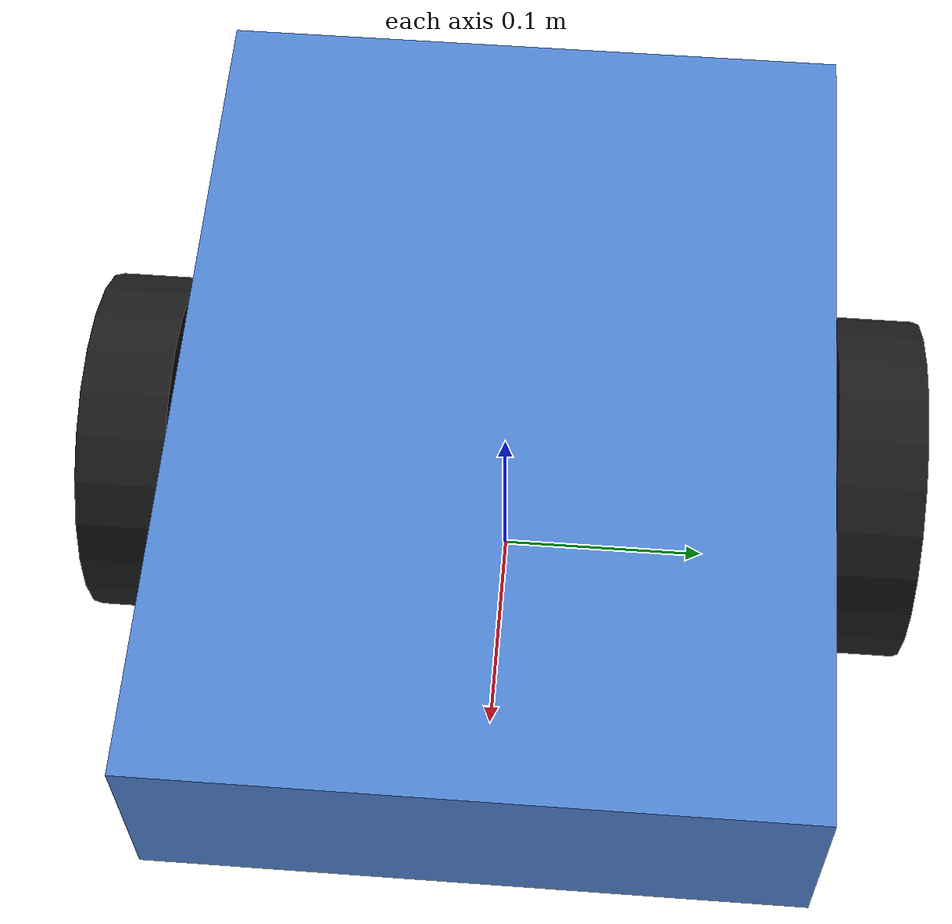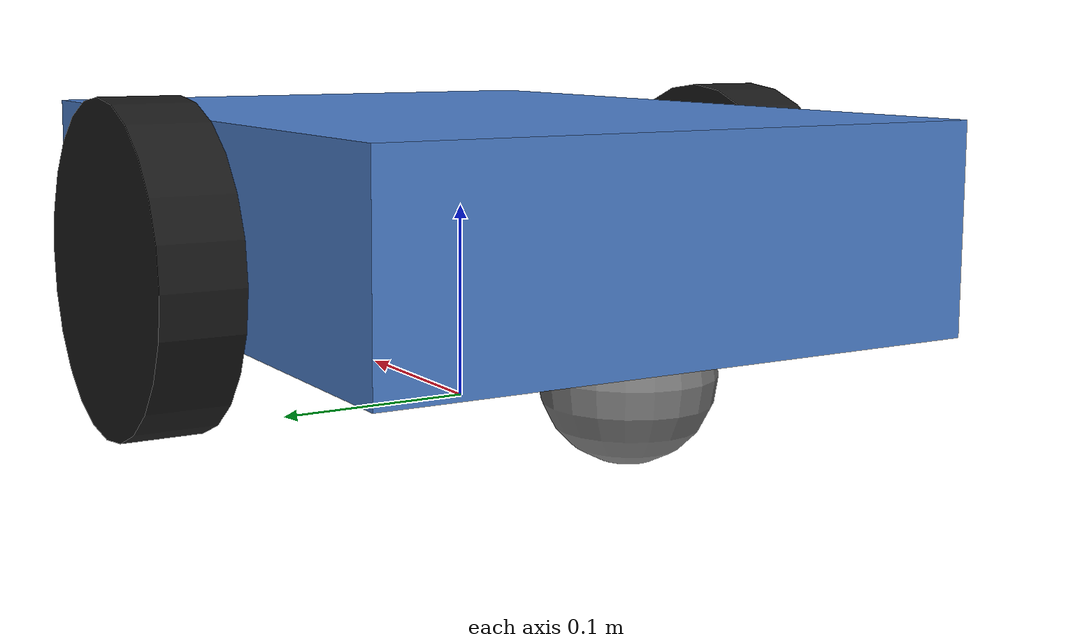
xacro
<?xml version="1.0"?>

<robot xmlns:xacro="http://www.ros.org/wiki/xacro"
       name="mobile_robot">

  <!-- Robot Parameters -->

  <xacro:property name="body_length" value="0.40"/>
  <xacro:property name="body_width"  value="0.30"/>
  <xacro:property name="body_height" value="0.10"/>

  <xacro:property name="wheel_radius" value="0.08"/>
  <xacro:property name="wheel_width"  value="0.04"/>

  <!-- BASE LINK -->

  <link name="base_link">

    <visual>
      <origin xyz="0 0 0.10" rpy="0 0 0"/>

      <geometry>
        <box size="${body_length} ${body_width} ${body_height}"/>
      </geometry>

      <material name="body_color">
        <color rgba="0.3 0.5 0.8 1.0"/>
      </material>
    </visual>

    <collision>
      <origin xyz="0 0 0.10" rpy="0 0 0"/>

      <geometry>
        <box size="${body_length} ${body_width} ${body_height}"/>
      </geometry>
    </collision>

    <inertial>
      <origin xyz="0 0 0.10" rpy="0 0 0"/>

      <mass value="5.0"/>

      <inertia
        ixx="0.05"
        ixy="0.0"
        ixz="0.0"
        iyy="0.08"
        iyz="0.0"
        izz="0.10"/>
    </inertial>

  </link>

  <!-- LEFT WHEEL -->

  <link name="left_wheel_link">

    <visual>
      <origin xyz="0 0 0" rpy="${pi/2} 0 0"/>

      <geometry>
        <cylinder
          radius="${wheel_radius}"
          length="${wheel_width}"/>
      </geometry>

      <material name="wheel_color">
        <color rgba="0.1 0.1 0.1 1.0"/>
      </material>
    </visual>

    <collision>
      <origin xyz="0 0 0" rpy="${pi/2} 0 0"/>

      <geometry>
        <cylinder
          radius="${wheel_radius}"
          length="${wheel_width}"/>
      </geometry>
    </collision>

    <inertial>
      <mass value="0.5"/>

      <inertia
        ixx="0.002"
        ixy="0"
        ixz="0"
        iyy="0.002"
        iyz="0"
        izz="0.002"/>
    </inertial>

  </link>

  <!-- RIGHT WHEEL -->

  <link name="right_wheel_link">

    <visual>
      <origin xyz="0 0 0" rpy="${pi/2} 0 0"/>

      <geometry>
        <cylinder
          radius="${wheel_radius}"
          length="${wheel_width}"/>
      </geometry>

      <material name="wheel_color"/>
    </visual>

    <collision>
      <origin xyz="0 0 0" rpy="${pi/2} 0 0"/>

      <geometry>
        <cylinder
          radius="${wheel_radius}"
          length="${wheel_width}"/>
      </geometry>
    </collision>

    <inertial>
      <mass value="0.5"/>

      <inertia
        ixx="0.002"
        ixy="0"
        ixz="0"
        iyy="0.002"
        iyz="0"
        izz="0.002"/>
    </inertial>

  </link>

  <!-- LEFT WHEEL JOINT -->

  <joint name="left_wheel_joint" type="continuous">

    <parent link="base_link"/>
    <child link="left_wheel_link"/>

    <origin xyz="0 0.17 0.08" rpy="0 0 0"/>

    <axis xyz="0 1 0"/>

  </joint>

  <!-- RIGHT WHEEL JOINT -->

  <joint name="right_wheel_joint" type="continuous">

    <parent link="base_link"/>
    <child link="right_wheel_link"/>

    <origin xyz="0 -0.17 0.08" rpy="0 0 0"/>

    <axis xyz="0 1 0"/>

  </joint>

  <!-- CASTER -->

  <link name="caster_link">

    <visual>
      <geometry>
        <sphere radius="0.04"/>
      </geometry>

      <material name="caster_color">
        <color rgba="0.5 0.5 0.5 1"/>
      </material>
    </visual>

    <collision>
      <geometry>
        <sphere radius="0.04"/>
      </geometry>
    </collision>

    <inertial>
      <mass value="0.2"/>

      <inertia
        ixx="0.0001"
        ixy="0"
        ixz="0"
        iyy="0.0001"
        iyz="0"
        izz="0.0001"/>
    </inertial>

  </link>

  <joint name="caster_joint" type="fixed">

    <parent link="base_link"/>
    <child link="caster_link"/>

    <origin xyz="-0.15 0 0.04" rpy="0 0 0"/>

  </joint>

</robot>
